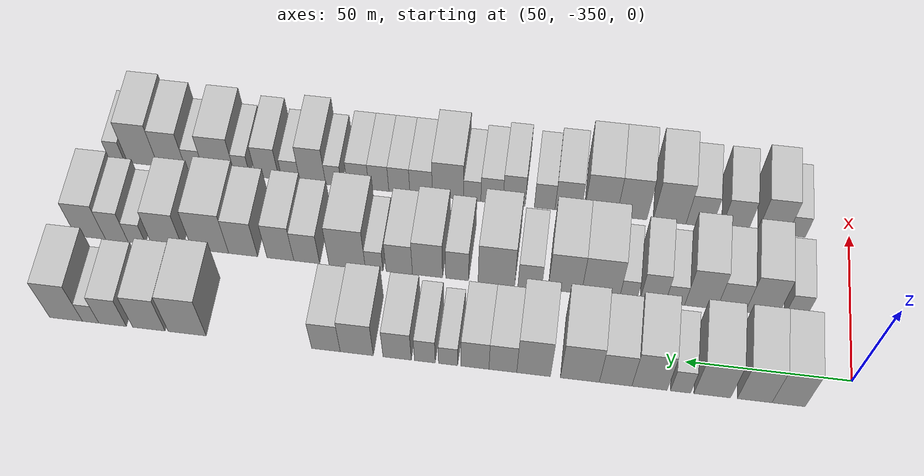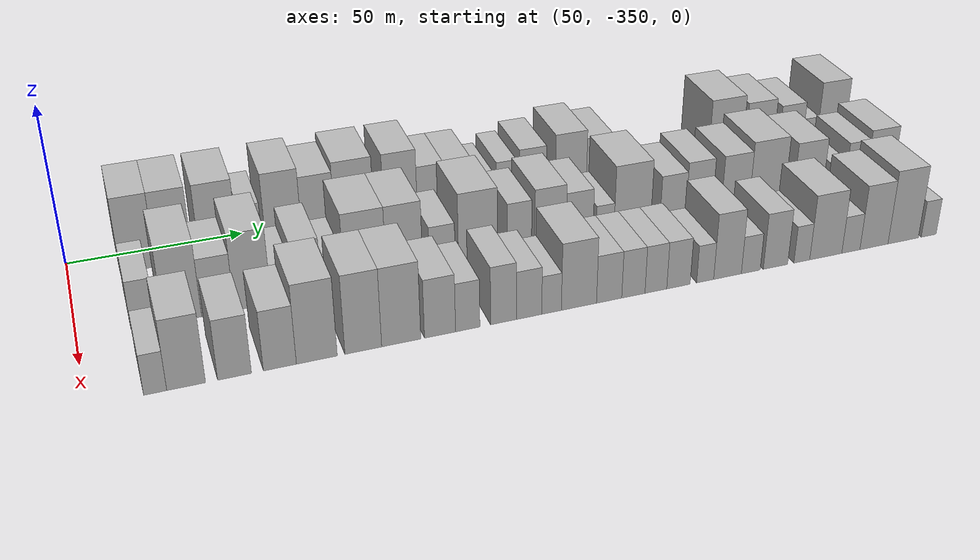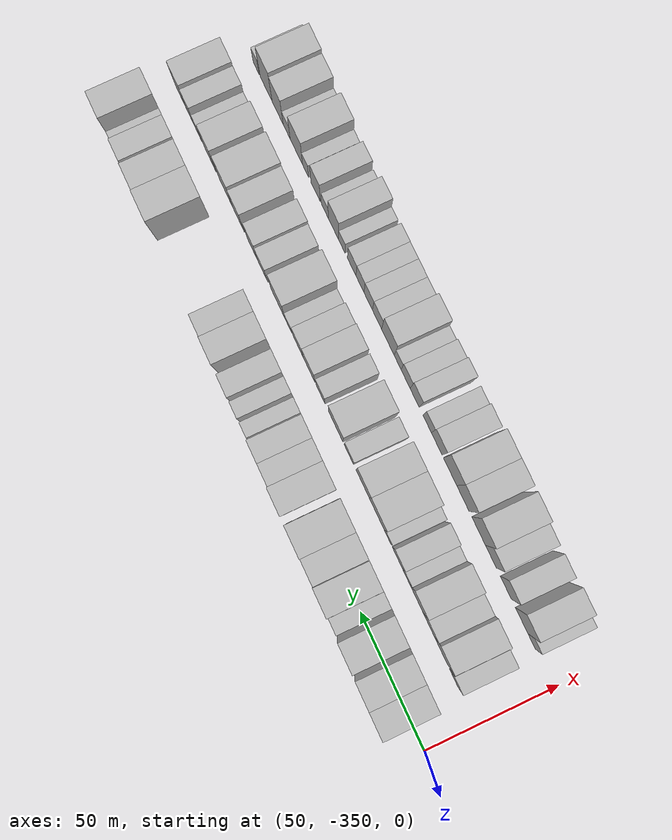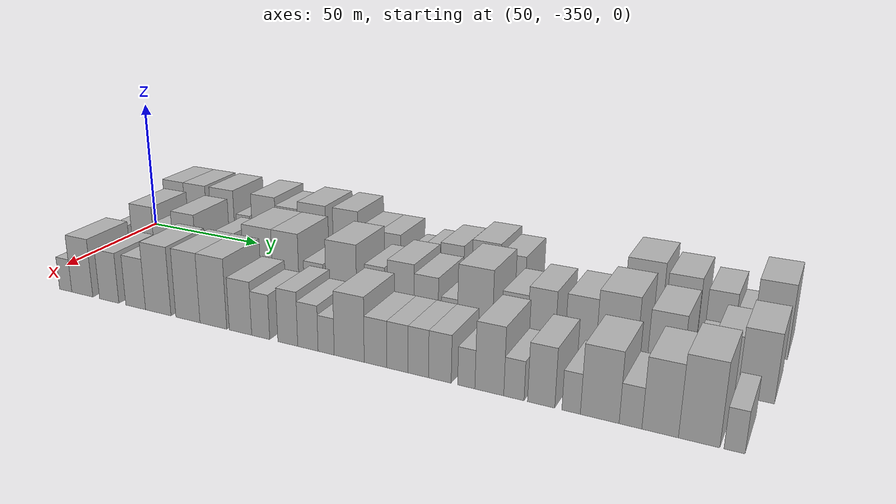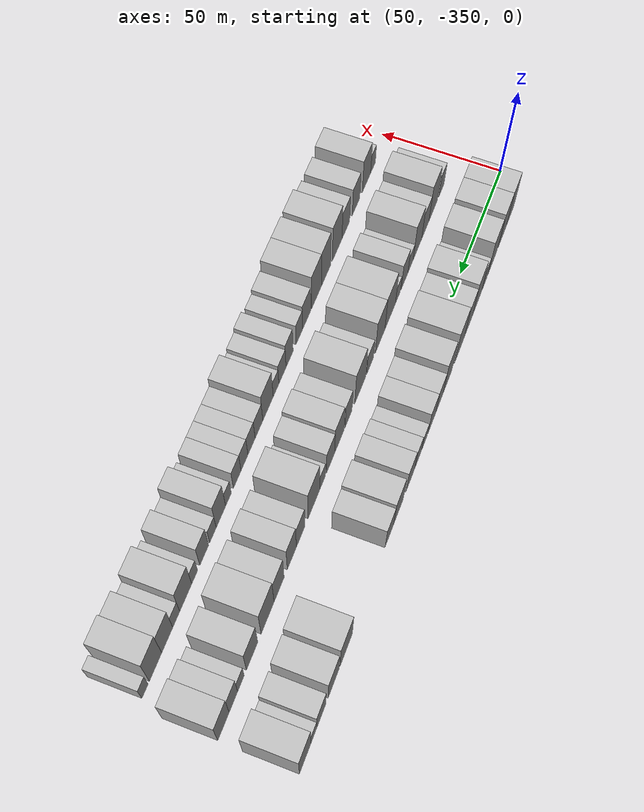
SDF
<sdf version="1.6">
 <world name="default">
  <model name="building_1">
   <static>1</static>
   <pose>50.0000 -331.0609 0 0.000000 0.000000 0.000000</pose>
   <link name="link">
    <pose>0 0 12.00 0 0 0</pose>
    <collision name="collision"><geometry><box><size>20.0000 9.8782 24.0000</size></box></geometry></collision>
    <visual name="visual">
     <cast_shadows>0</cast_shadows>
     <geometry><box><size>20.0000 9.8782 24.0000</size></box></geometry>
     <material>
      <script>
       <uri>model://HANNAS_wall/materials/scripts</uri>
       <uri>model://HANNAS_wall/materials/textures</uri>
       <name>vrc/HANNAS_wall</name>
      </script>
     </material>
    </visual>
   </link>
  </model>
  <model name="building_2">
   <static>1</static>
   <pose>50.0000 -320.9515 0 0.000000 0.000000 0.000000</pose>
   <link name="link">
    <pose>0 0 12.00 0 0 0</pose>
    <collision name="collision"><geometry><box><size>20.0000 10.3405 24.0000</size></box></geometry></collision>
    <visual name="visual">
     <cast_shadows>0</cast_shadows>
     <geometry><box><size>20.0000 10.3405 24.0000</size></box></geometry>
     <material>
      <script>
       <uri>model://HANNAS_wall/materials/scripts</uri>
       <uri>model://HANNAS_wall/materials/textures</uri>
       <name>vrc/HANNAS_wall</name>
      </script>
     </material>
    </visual>
   </link>
  </model>
  <model name="building_3">
   <static>1</static>
   <pose>50.0000 -308.2976 0 0.000000 0.000000 0.000000</pose>
   <link name="link">
    <pose>0 0 12.00 0 0 0</pose>
    <collision name="collision"><geometry><box><size>20.0000 10.9674 24.0000</size></box></geometry></collision>
    <visual name="visual">
     <cast_shadows>0</cast_shadows>
     <geometry><box><size>20.0000 10.9674 24.0000</size></box></geometry>
     <material>
      <script>
       <uri>model://HANNAS_wall/materials/scripts</uri>
       <uri>model://HANNAS_wall/materials/textures</uri>
       <name>vrc/HANNAS_wall</name>
      </script>
     </material>
    </visual>
   </link>
  </model>
  <model name="building_4">
   <static>1</static>
   <pose>50.0000 -298.7830 0 0.000000 0.000000 0.000000</pose>
   <link name="link">
    <pose>0 0 7.50 0 0 0</pose>
    <collision name="collision"><geometry><box><size>20.0000 6.0617 15.0000</size></box></geometry></collision>
    <visual name="visual">
     <cast_shadows>0</cast_shadows>
     <geometry><box><size>20.0000 6.0617 15.0000</size></box></geometry>
     <material>
      <script>
       <uri>model://HANNAS_wall/materials/scripts</uri>
       <uri>model://HANNAS_wall/materials/textures</uri>
       <name>vrc/HANNAS_wall</name>
      </script>
     </material>
    </visual>
   </link>
  </model>
  <model name="building_5">
   <static>1</static>
   <pose>50.0000 -289.4599 0 0.000000 0.000000 0.000000</pose>
   <link name="link">
    <pose>0 0 12.00 0 0 0</pose>
    <collision name="collision"><geometry><box><size>20.0000 10.5843 24.0000</size></box></geometry></collision>
    <visual name="visual">
     <cast_shadows>0</cast_shadows>
     <geometry><box><size>20.0000 10.5843 24.0000</size></box></geometry>
     <material>
      <script>
       <uri>model://HANNAS_wall/materials/scripts</uri>
       <uri>model://HANNAS_wall/materials/textures</uri>
       <name>vrc/HANNAS_wall</name>
      </script>
     </material>
    </visual>
   </link>
  </model>
  <model name="building_6">
   <static>1</static>
   <pose>50.0000 -279.2546 0 0.000000 0.000000 0.000000</pose>
   <link name="link">
    <pose>0 0 10.50 0 0 0</pose>
    <collision name="collision"><geometry><box><size>20.0000 9.8263 21.0000</size></box></geometry></collision>
    <visual name="visual">
     <cast_shadows>0</cast_shadows>
     <geometry><box><size>20.0000 9.8263 21.0000</size></box></geometry>
     <material>
      <script>
       <uri>model://HANNAS_wall/materials/scripts</uri>
       <uri>model://HANNAS_wall/materials/textures</uri>
       <name>vrc/HANNAS_wall</name>
      </script>
     </material>
    </visual>
   </link>
  </model>
  <model name="building_7">
   <static>1</static>
   <pose>50.0000 -268.4391 0 0.000000 0.000000 0.000000</pose>
   <link name="link">
    <pose>0 0 12.00 0 0 0</pose>
    <collision name="collision"><geometry><box><size>20.0000 11.8049 24.0000</size></box></geometry></collision>
    <visual name="visual">
     <cast_shadows>0</cast_shadows>
     <geometry><box><size>20.0000 11.8049 24.0000</size></box></geometry>
     <material>
      <script>
       <uri>model://HANNAS_wall/materials/scripts</uri>
       <uri>model://HANNAS_wall/materials/textures</uri>
       <name>vrc/HANNAS_wall</name>
      </script>
     </material>
    </visual>
   </link>
  </model>
  <model name="building_8">
   <static>1</static>
   <pose>50.0000 -254.4093 0 0.000000 0.000000 0.000000</pose>
   <link name="link">
    <pose>0 0 12.00 0 0 0</pose>
    <collision name="collision"><geometry><box><size>20.0000 10.2547 24.0000</size></box></geometry></collision>
    <visual name="visual">
     <cast_shadows>0</cast_shadows>
     <geometry><box><size>20.0000 10.2547 24.0000</size></box></geometry>
     <material>
      <script>
       <uri>model://HANNAS_wall/materials/scripts</uri>
       <uri>model://HANNAS_wall/materials/textures</uri>
       <name>vrc/HANNAS_wall</name>
      </script>
     </material>
    </visual>
   </link>
  </model>
  <model name="building_9">
   <static>1</static>
   <pose>50.0000 -245.0454 0 0.000000 0.000000 0.000000</pose>
   <link name="link">
    <pose>0 0 9.00 0 0 0</pose>
    <collision name="collision"><geometry><box><size>20.0000 8.4732 18.0000</size></box></geometry></collision>
    <visual name="visual">
     <cast_shadows>0</cast_shadows>
     <geometry><box><size>20.0000 8.4732 18.0000</size></box></geometry>
     <material>
      <script>
       <uri>model://HANNAS_wall/materials/scripts</uri>
       <uri>model://HANNAS_wall/materials/textures</uri>
       <name>vrc/HANNAS_wall</name>
      </script>
     </material>
    </visual>
   </link>
  </model>
  <model name="building_10">
   <static>1</static>
   <pose>50.0000 -236.5340 0 0.000000 0.000000 0.000000</pose>
   <link name="link">
    <pose>0 0 9.00 0 0 0</pose>
    <collision name="collision"><geometry><box><size>20.0000 8.5496 18.0000</size></box></geometry></collision>
    <visual name="visual">
     <cast_shadows>0</cast_shadows>
     <geometry><box><size>20.0000 8.5496 18.0000</size></box></geometry>
     <material>
      <script>
       <uri>model://HANNAS_wall/materials/scripts</uri>
       <uri>model://HANNAS_wall/materials/textures</uri>
       <name>vrc/HANNAS_wall</name>
      </script>
     </material>
    </visual>
   </link>
  </model>
  <model name="building_11">
   <static>1</static>
   <pose>50.0000 -228.3229 0 0.000000 0.000000 0.000000</pose>
   <link name="link">
    <pose>0 0 6.00 0 0 0</pose>
    <collision name="collision"><geometry><box><size>20.0000 5.8725 12.0000</size></box></geometry></collision>
    <visual name="visual">
     <cast_shadows>0</cast_shadows>
     <geometry><box><size>20.0000 5.8725 12.0000</size></box></geometry>
     <material>
      <script>
       <uri>model://HANNAS_wall/materials/scripts</uri>
       <uri>model://HANNAS_wall/materials/textures</uri>
       <name>vrc/HANNAS_wall</name>
      </script>
     </material>
    </visual>
   </link>
  </model>
  <model name="building_12">
   <static>1</static>
   <pose>50.0000 -221.2044 0 0.000000 0.000000 0.000000</pose>
   <link name="link">
    <pose>0 0 7.50 0 0 0</pose>
    <collision name="collision"><geometry><box><size>20.0000 6.3645 15.0000</size></box></geometry></collision>
    <visual name="visual">
     <cast_shadows>0</cast_shadows>
     <geometry><box><size>20.0000 6.3645 15.0000</size></box></geometry>
     <material>
      <script>
       <uri>model://HANNAS_wall/materials/scripts</uri>
       <uri>model://HANNAS_wall/materials/textures</uri>
       <name>vrc/HANNAS_wall</name>
      </script>
     </material>
    </visual>
   </link>
  </model>
  <model name="building_13">
   <static>1</static>
   <pose>50.0000 -212.6787 0 0.000000 0.000000 0.000000</pose>
   <link name="link">
    <pose>0 0 9.00 0 0 0</pose>
    <collision name="collision"><geometry><box><size>20.0000 8.6868 18.0000</size></box></geometry></collision>
    <visual name="visual">
     <cast_shadows>0</cast_shadows>
     <geometry><box><size>20.0000 8.6868 18.0000</size></box></geometry>
     <material>
      <script>
       <uri>model://HANNAS_wall/materials/scripts</uri>
       <uri>model://HANNAS_wall/materials/textures</uri>
       <name>vrc/HANNAS_wall</name>
      </script>
     </material>
    </visual>
   </link>
  </model>
  <model name="building_14">
   <static>1</static>
   <pose>50.0000 -200.2189 0 0.000000 0.000000 0.000000</pose>
   <link name="link">
    <pose>0 0 10.50 0 0 0</pose>
    <collision name="collision"><geometry><box><size>20.0000 10.2329 21.0000</size></box></geometry></collision>
    <visual name="visual">
     <cast_shadows>0</cast_shadows>
     <geometry><box><size>20.0000 10.2329 21.0000</size></box></geometry>
     <material>
      <script>
       <uri>model://HANNAS_wall/materials/scripts</uri>
       <uri>model://HANNAS_wall/materials/textures</uri>
       <name>vrc/HANNAS_wall</name>
      </script>
     </material>
    </visual>
   </link>
  </model>
  <model name="building_15">
   <static>1</static>
   <pose>50.0000 -190.6739 0 0.000000 0.000000 0.000000</pose>
   <link name="link">
    <pose>0 0 9.00 0 0 0</pose>
    <collision name="collision"><geometry><box><size>20.0000 8.8571 18.0000</size></box></geometry></collision>
    <visual name="visual">
     <cast_shadows>0</cast_shadows>
     <geometry><box><size>20.0000 8.8571 18.0000</size></box></geometry>
     <material>
      <script>
       <uri>model://HANNAS_wall/materials/scripts</uri>
       <uri>model://HANNAS_wall/materials/textures</uri>
       <name>vrc/HANNAS_wall</name>
      </script>
     </material>
    </visual>
   </link>
  </model>
  <model name="building_16">
   <static>1</static>
   <pose>50.0000 -147.3587 0 0.000000 0.000000 0.000000</pose>
   <link name="link">
    <pose>0 0 12.00 0 0 0</pose>
    <collision name="collision"><geometry><box><size>20.0000 11.9244 24.0000</size></box></geometry></collision>
    <visual name="visual">
     <cast_shadows>0</cast_shadows>
     <geometry><box><size>20.0000 11.9244 24.0000</size></box></geometry>
     <material>
      <script>
       <uri>model://HANNAS_wall/materials/scripts</uri>
       <uri>model://HANNAS_wall/materials/textures</uri>
       <name>vrc/HANNAS_wall</name>
      </script>
     </material>
    </visual>
   </link>
  </model>
  <model name="building_17">
   <static>1</static>
   <pose>50.0000 -135.2975 0 0.000000 0.000000 0.000000</pose>
   <link name="link">
    <pose>0 0 10.50 0 0 0</pose>
    <collision name="collision"><geometry><box><size>20.0000 10.1980 21.0000</size></box></geometry></collision>
    <visual name="visual">
     <cast_shadows>0</cast_shadows>
     <geometry><box><size>20.0000 10.1980 21.0000</size></box></geometry>
     <material>
      <script>
       <uri>model://HANNAS_wall/materials/scripts</uri>
       <uri>model://HANNAS_wall/materials/textures</uri>
       <name>vrc/HANNAS_wall</name>
      </script>
     </material>
    </visual>
   </link>
  </model>
  <model name="building_18">
   <static>1</static>
   <pose>50.0000 -123.8516 0 0.000000 0.000000 0.000000</pose>
   <link name="link">
    <pose>0 0 9.00 0 0 0</pose>
    <collision name="collision"><geometry><box><size>20.0000 8.6937 18.0000</size></box></geometry></collision>
    <visual name="visual">
     <cast_shadows>0</cast_shadows>
     <geometry><box><size>20.0000 8.6937 18.0000</size></box></geometry>
     <material>
      <script>
       <uri>model://HANNAS_wall/materials/scripts</uri>
       <uri>model://HANNAS_wall/materials/textures</uri>
       <name>vrc/HANNAS_wall</name>
      </script>
     </material>
    </visual>
   </link>
  </model>
  <model name="building_19">
   <static>1</static>
   <pose>50.0000 -116.8912 0 0.000000 0.000000 0.000000</pose>
   <link name="link">
    <pose>0 0 6.00 0 0 0</pose>
    <collision name="collision"><geometry><box><size>20.0000 5.2271 12.0000</size></box></geometry></collision>
    <visual name="visual">
     <cast_shadows>0</cast_shadows>
     <geometry><box><size>20.0000 5.2271 12.0000</size></box></geometry>
     <material>
      <script>
       <uri>model://HANNAS_wall/materials/scripts</uri>
       <uri>model://HANNAS_wall/materials/textures</uri>
       <name>vrc/HANNAS_wall</name>
      </script>
     </material>
    </visual>
   </link>
  </model>
  <model name="building_20">
   <static>1</static>
   <pose>50.0000 -109.0823 0 0.000000 0.000000 0.000000</pose>
   <link name="link">
    <pose>0 0 12.00 0 0 0</pose>
    <collision name="collision"><geometry><box><size>20.0000 10.3908 24.0000</size></box></geometry></collision>
    <visual name="visual">
     <cast_shadows>0</cast_shadows>
     <geometry><box><size>20.0000 10.3908 24.0000</size></box></geometry>
     <material>
      <script>
       <uri>model://HANNAS_wall/materials/scripts</uri>
       <uri>model://HANNAS_wall/materials/textures</uri>
       <name>vrc/HANNAS_wall</name>
      </script>
     </material>
    </visual>
   </link>
  </model>
  <model name="building_66">
   <static>1</static>
   <pose>79.0000 -332.7898 0 0.000000 0.000000 0.000000</pose>
   <link name="link">
    <pose>0 0 7.50 0 0 0</pose>
    <collision name="collision"><geometry><box><size>20.0000 6.4204 15.0000</size></box></geometry></collision>
    <visual name="visual">
     <cast_shadows>0</cast_shadows>
     <geometry><box><size>20.0000 6.4204 15.0000</size></box></geometry>
     <material>
      <script>
       <uri>model://HANNAS_wall/materials/scripts</uri>
       <uri>model://HANNAS_wall/materials/textures</uri>
       <name>vrc/HANNAS_wall</name>
      </script>
     </material>
    </visual>
   </link>
  </model>
  <model name="building_67">
   <static>1</static>
   <pose>79.0000 -322.5550 0 0.000000 0.000000 0.000000</pose>
   <link name="link">
    <pose>0 0 12.00 0 0 0</pose>
    <collision name="collision"><geometry><box><size>20.0000 10.0492 24.0000</size></box></geometry></collision>
    <visual name="visual">
     <cast_shadows>0</cast_shadows>
     <geometry><box><size>20.0000 10.0492 24.0000</size></box></geometry>
     <material>
      <script>
       <uri>model://HANNAS_wall/materials/scripts</uri>
       <uri>model://HANNAS_wall/materials/textures</uri>
       <name>vrc/HANNAS_wall</name>
      </script>
     </material>
    </visual>
   </link>
  </model>
  <model name="building_68">
   <static>1</static>
   <pose>79.0000 -313.1486 0 0.000000 0.000000 0.000000</pose>
   <link name="link">
    <pose>0 0 9.00 0 0 0</pose>
    <collision name="collision"><geometry><box><size>20.0000 8.7636 18.0000</size></box></geometry></collision>
    <visual name="visual">
     <cast_shadows>0</cast_shadows>
     <geometry><box><size>20.0000 8.7636 18.0000</size></box></geometry>
     <material>
      <script>
       <uri>model://HANNAS_wall/materials/scripts</uri>
       <uri>model://HANNAS_wall/materials/textures</uri>
       <name>vrc/HANNAS_wall</name>
      </script>
     </material>
    </visual>
   </link>
  </model>
  <model name="building_69">
   <static>1</static>
   <pose>79.0000 -303.7662 0 0.000000 0.000000 0.000000</pose>
   <link name="link">
    <pose>0 0 12.00 0 0 0</pose>
    <collision name="collision"><geometry><box><size>20.0000 10.0013 24.0000</size></box></geometry></collision>
    <visual name="visual">
     <cast_shadows>0</cast_shadows>
     <geometry><box><size>20.0000 10.0013 24.0000</size></box></geometry>
     <material>
      <script>
       <uri>model://HANNAS_wall/materials/scripts</uri>
       <uri>model://HANNAS_wall/materials/textures</uri>
       <name>vrc/HANNAS_wall</name>
      </script>
     </material>
    </visual>
   </link>
  </model>
  <model name="building_70">
   <static>1</static>
   <pose>79.0000 -295.7682 0 0.000000 0.000000 0.000000</pose>
   <link name="link">
    <pose>0 0 6.00 0 0 0</pose>
    <collision name="collision"><geometry><box><size>20.0000 5.9946 12.0000</size></box></geometry></collision>
    <visual name="visual">
     <cast_shadows>0</cast_shadows>
     <geometry><box><size>20.0000 5.9946 12.0000</size></box></geometry>
     <material>
      <script>
       <uri>model://HANNAS_wall/materials/scripts</uri>
       <uri>model://HANNAS_wall/materials/textures</uri>
       <name>vrc/HANNAS_wall</name>
      </script>
     </material>
    </visual>
   </link>
  </model>
  <model name="building_71">
   <static>1</static>
   <pose>79.0000 -288.8349 0 0.000000 0.000000 0.000000</pose>
   <link name="link">
    <pose>0 0 9.00 0 0 0</pose>
    <collision name="collision"><geometry><box><size>20.0000 7.8722 18.0000</size></box></geometry></collision>
    <visual name="visual">
     <cast_shadows>0</cast_shadows>
     <geometry><box><size>20.0000 7.8722 18.0000</size></box></geometry>
     <material>
      <script>
       <uri>model://HANNAS_wall/materials/scripts</uri>
       <uri>model://HANNAS_wall/materials/textures</uri>
       <name>vrc/HANNAS_wall</name>
      </script>
     </material>
    </visual>
   </link>
  </model>
  <model name="building_72">
   <static>1</static>
   <pose>79.0000 -281.1963 0 0.000000 0.000000 0.000000</pose>
   <link name="link">
    <pose>0 0 6.00 0 0 0</pose>
    <collision name="collision"><geometry><box><size>20.0000 5.4050 12.0000</size></box></geometry></collision>
    <visual name="visual">
     <cast_shadows>0</cast_shadows>
     <geometry><box><size>20.0000 5.4050 12.0000</size></box></geometry>
     <material>
      <script>
       <uri>model://HANNAS_wall/materials/scripts</uri>
       <uri>model://HANNAS_wall/materials/textures</uri>
       <name>vrc/HANNAS_wall</name>
      </script>
     </material>
    </visual>
   </link>
  </model>
  <model name="building_73">
   <static>1</static>
   <pose>79.0000 -272.5330 0 0.000000 0.000000 0.000000</pose>
   <link name="link">
    <pose>0 0 12.00 0 0 0</pose>
    <collision name="collision"><geometry><box><size>20.0000 11.9215 24.0000</size></box></geometry></collision>
    <visual name="visual">
     <cast_shadows>0</cast_shadows>
     <geometry><box><size>20.0000 11.9215 24.0000</size></box></geometry>
     <material>
      <script>
       <uri>model://HANNAS_wall/materials/scripts</uri>
       <uri>model://HANNAS_wall/materials/textures</uri>
       <name>vrc/HANNAS_wall</name>
      </script>
     </material>
    </visual>
   </link>
  </model>
  <model name="building_74">
   <static>1</static>
   <pose>79.0000 -261.3269 0 0.000000 0.000000 0.000000</pose>
   <link name="link">
    <pose>0 0 12.00 0 0 0</pose>
    <collision name="collision"><geometry><box><size>20.0000 10.4909 24.0000</size></box></geometry></collision>
    <visual name="visual">
     <cast_shadows>0</cast_shadows>
     <geometry><box><size>20.0000 10.4909 24.0000</size></box></geometry>
     <material>
      <script>
       <uri>model://HANNAS_wall/materials/scripts</uri>
       <uri>model://HANNAS_wall/materials/textures</uri>
       <name>vrc/HANNAS_wall</name>
      </script>
     </material>
    </visual>
   </link>
  </model>
  <model name="building_75">
   <static>1</static>
   <pose>79.0000 -250.3343 0 0.000000 0.000000 0.000000</pose>
   <link name="link">
    <pose>0 0 7.50 0 0 0</pose>
    <collision name="collision"><geometry><box><size>20.0000 7.4943 15.0000</size></box></geometry></collision>
    <visual name="visual">
     <cast_shadows>0</cast_shadows>
     <geometry><box><size>20.0000 7.4943 15.0000</size></box></geometry>
     <material>
      <script>
       <uri>model://HANNAS_wall/materials/scripts</uri>
       <uri>model://HANNAS_wall/materials/textures</uri>
       <name>vrc/HANNAS_wall</name>
      </script>
     </material>
    </visual>
   </link>
  </model>
  <model name="building_76">
   <static>1</static>
   <pose>79.0000 -239.8022 0 0.000000 0.000000 0.000000</pose>
   <link name="link">
    <pose>0 0 12.00 0 0 0</pose>
    <collision name="collision"><geometry><box><size>20.0000 11.5699 24.0000</size></box></geometry></collision>
    <visual name="visual">
     <cast_shadows>0</cast_shadows>
     <geometry><box><size>20.0000 11.5699 24.0000</size></box></geometry>
     <material>
      <script>
       <uri>model://HANNAS_wall/materials/scripts</uri>
       <uri>model://HANNAS_wall/materials/textures</uri>
       <name>vrc/HANNAS_wall</name>
      </script>
     </material>
    </visual>
   </link>
  </model>
  <model name="building_77">
   <static>1</static>
   <pose>79.0000 -227.3845 0 0.000000 0.000000 0.000000</pose>
   <link name="link">
    <pose>0 0 9.00 0 0 0</pose>
    <collision name="collision"><geometry><box><size>20.0000 7.2656 18.0000</size></box></geometry></collision>
    <visual name="visual">
     <cast_shadows>0</cast_shadows>
     <geometry><box><size>20.0000 7.2656 18.0000</size></box></geometry>
     <material>
      <script>
       <uri>model://HANNAS_wall/materials/scripts</uri>
       <uri>model://HANNAS_wall/materials/textures</uri>
       <name>vrc/HANNAS_wall</name>
      </script>
     </material>
    </visual>
   </link>
  </model>
  <model name="building_78">
   <static>1</static>
   <pose>79.0000 -217.9705 0 0.000000 0.000000 0.000000</pose>
   <link name="link">
    <pose>0 0 10.50 0 0 0</pose>
    <collision name="collision"><geometry><box><size>20.0000 9.5624 21.0000</size></box></geometry></collision>
    <visual name="visual">
     <cast_shadows>0</cast_shadows>
     <geometry><box><size>20.0000 9.5624 21.0000</size></box></geometry>
     <material>
      <script>
       <uri>model://HANNAS_wall/materials/scripts</uri>
       <uri>model://HANNAS_wall/materials/textures</uri>
       <name>vrc/HANNAS_wall</name>
      </script>
     </material>
    </visual>
   </link>
  </model>
  <model name="building_79">
   <static>1</static>
   <pose>79.0000 -208.9922 0 0.000000 0.000000 0.000000</pose>
   <link name="link">
    <pose>0 0 9.00 0 0 0</pose>
    <collision name="collision"><geometry><box><size>20.0000 8.3942 18.0000</size></box></geometry></collision>
    <visual name="visual">
     <cast_shadows>0</cast_shadows>
     <geometry><box><size>20.0000 8.3942 18.0000</size></box></geometry>
     <material>
      <script>
       <uri>model://HANNAS_wall/materials/scripts</uri>
       <uri>model://HANNAS_wall/materials/textures</uri>
       <name>vrc/HANNAS_wall</name>
      </script>
     </material>
    </visual>
   </link>
  </model>
  <model name="building_80">
   <static>1</static>
   <pose>79.0000 -200.9954 0 0.000000 0.000000 0.000000</pose>
   <link name="link">
    <pose>0 0 6.00 0 0 0</pose>
    <collision name="collision"><geometry><box><size>20.0000 5.5994 12.0000</size></box></geometry></collision>
    <visual name="visual">
     <cast_shadows>0</cast_shadows>
     <geometry><box><size>20.0000 5.5994 12.0000</size></box></geometry>
     <material>
      <script>
       <uri>model://HANNAS_wall/materials/scripts</uri>
       <uri>model://HANNAS_wall/materials/textures</uri>
       <name>vrc/HANNAS_wall</name>
      </script>
     </material>
    </visual>
   </link>
  </model>
  <model name="building_81">
   <static>1</static>
   <pose>79.0000 -192.3640 0 0.000000 0.000000 0.000000</pose>
   <link name="link">
    <pose>0 0 12.00 0 0 0</pose>
    <collision name="collision"><geometry><box><size>20.0000 11.6633 24.0000</size></box></geometry></collision>
    <visual name="visual">
     <cast_shadows>0</cast_shadows>
     <geometry><box><size>20.0000 11.6633 24.0000</size></box></geometry>
     <material>
      <script>
       <uri>model://HANNAS_wall/materials/scripts</uri>
       <uri>model://HANNAS_wall/materials/textures</uri>
       <name>vrc/HANNAS_wall</name>
      </script>
     </material>
    </visual>
   </link>
  </model>
  <model name="building_82">
   <static>1</static>
   <pose>79.0000 -179.3714 0 0.000000 0.000000 0.000000</pose>
   <link name="link">
    <pose>0 0 9.00 0 0 0</pose>
    <collision name="collision"><geometry><box><size>20.0000 8.3219 18.0000</size></box></geometry></collision>
    <visual name="visual">
     <cast_shadows>0</cast_shadows>
     <geometry><box><size>20.0000 8.3219 18.0000</size></box></geometry>
     <material>
      <script>
       <uri>model://HANNAS_wall/materials/scripts</uri>
       <uri>model://HANNAS_wall/materials/textures</uri>
       <name>vrc/HANNAS_wall</name>
      </script>
     </material>
    </visual>
   </link>
  </model>
  <model name="building_83">
   <static>1</static>
   <pose>79.0000 -170.8809 0 0.000000 0.000000 0.000000</pose>
   <link name="link">
    <pose>0 0 10.50 0 0 0</pose>
    <collision name="collision"><geometry><box><size>20.0000 8.6593 21.0000</size></box></geometry></collision>
    <visual name="visual">
     <cast_shadows>0</cast_shadows>
     <geometry><box><size>20.0000 8.6593 21.0000</size></box></geometry>
     <material>
      <script>
       <uri>model://HANNAS_wall/materials/scripts</uri>
       <uri>model://HANNAS_wall/materials/textures</uri>
       <name>vrc/HANNAS_wall</name>
      </script>
     </material>
    </visual>
   </link>
  </model>
  <model name="building_84">
   <static>1</static>
   <pose>79.0000 -158.8651 0 0.000000 0.000000 0.000000</pose>
   <link name="link">
    <pose>0 0 10.50 0 0 0</pose>
    <collision name="collision"><geometry><box><size>20.0000 9.3723 21.0000</size></box></geometry></collision>
    <visual name="visual">
     <cast_shadows>0</cast_shadows>
     <geometry><box><size>20.0000 9.3723 21.0000</size></box></geometry>
     <material>
      <script>
       <uri>model://HANNAS_wall/materials/scripts</uri>
       <uri>model://HANNAS_wall/materials/textures</uri>
       <name>vrc/HANNAS_wall</name>
      </script>
     </material>
    </visual>
   </link>
  </model>
  <model name="building_85">
   <static>1</static>
   <pose>79.0000 -148.2114 0 0.000000 0.000000 0.000000</pose>
   <link name="link">
    <pose>0 0 12.00 0 0 0</pose>
    <collision name="collision"><geometry><box><size>20.0000 11.9352 24.0000</size></box></geometry></collision>
    <visual name="visual">
     <cast_shadows>0</cast_shadows>
     <geometry><box><size>20.0000 11.9352 24.0000</size></box></geometry>
     <material>
      <script>
       <uri>model://HANNAS_wall/materials/scripts</uri>
       <uri>model://HANNAS_wall/materials/textures</uri>
       <name>vrc/HANNAS_wall</name>
      </script>
     </material>
    </visual>
   </link>
  </model>
  <model name="building_86">
   <static>1</static>
   <pose>79.0000 -134.1764 0 0.000000 0.000000 0.000000</pose>
   <link name="link">
    <pose>0 0 10.50 0 0 0</pose>
    <collision name="collision"><geometry><box><size>20.0000 10.1347 21.0000</size></box></geometry></collision>
    <visual name="visual">
     <cast_shadows>0</cast_shadows>
     <geometry><box><size>20.0000 10.1347 21.0000</size></box></geometry>
     <material>
      <script>
       <uri>model://HANNAS_wall/materials/scripts</uri>
       <uri>model://HANNAS_wall/materials/textures</uri>
       <name>vrc/HANNAS_wall</name>
      </script>
     </material>
    </visual>
   </link>
  </model>
  <model name="building_87">
   <static>1</static>
   <pose>79.0000 -124.2427 0 0.000000 0.000000 0.000000</pose>
   <link name="link">
    <pose>0 0 6.00 0 0 0</pose>
    <collision name="collision"><geometry><box><size>20.0000 5.7327 12.0000</size></box></geometry></collision>
    <visual name="visual">
     <cast_shadows>0</cast_shadows>
     <geometry><box><size>20.0000 5.7327 12.0000</size></box></geometry>
     <material>
      <script>
       <uri>model://HANNAS_wall/materials/scripts</uri>
       <uri>model://HANNAS_wall/materials/textures</uri>
       <name>vrc/HANNAS_wall</name>
      </script>
     </material>
    </visual>
   </link>
  </model>
  <model name="building_88">
   <static>1</static>
   <pose>79.0000 -117.6723 0 0.000000 0.000000 0.000000</pose>
   <link name="link">
    <pose>0 0 9.00 0 0 0</pose>
    <collision name="collision"><geometry><box><size>20.0000 7.4080 18.0000</size></box></geometry></collision>
    <visual name="visual">
     <cast_shadows>0</cast_shadows>
     <geometry><box><size>20.0000 7.4080 18.0000</size></box></geometry>
     <material>
      <script>
       <uri>model://HANNAS_wall/materials/scripts</uri>
       <uri>model://HANNAS_wall/materials/textures</uri>
       <name>vrc/HANNAS_wall</name>
      </script>
     </material>
    </visual>
   </link>
  </model>
  <model name="building_89">
   <static>1</static>
   <pose>79.0000 -109.0945 0 0.000000 0.000000 0.000000</pose>
   <link name="link">
    <pose>0 0 10.50 0 0 0</pose>
    <collision name="collision"><geometry><box><size>20.0000 9.7476 21.0000</size></box></geometry></collision>
    <visual name="visual">
     <cast_shadows>0</cast_shadows>
     <geometry><box><size>20.0000 9.7476 21.0000</size></box></geometry>
     <material>
      <script>
       <uri>model://HANNAS_wall/materials/scripts</uri>
       <uri>model://HANNAS_wall/materials/textures</uri>
       <name>vrc/HANNAS_wall</name>
      </script>
     </material>
    </visual>
   </link>
  </model>
  <model name="building_136">
   <static>1</static>
   <pose>108.0000 -333.1880 0 0.000000 0.000000 0.000000</pose>
   <link name="link">
    <pose>0 0 6.00 0 0 0</pose>
    <collision name="collision"><geometry><box><size>20.0000 5.6240 12.0000</size></box></geometry></collision>
    <visual name="visual">
     <cast_shadows>0</cast_shadows>
     <geometry><box><size>20.0000 5.6240 12.0000</size></box></geometry>
     <material>
      <script>
       <uri>model://HANNAS_wall/materials/scripts</uri>
       <uri>model://HANNAS_wall/materials/textures</uri>
       <name>vrc/HANNAS_wall</name>
      </script>
     </material>
    </visual>
   </link>
  </model>
  <model name="building_137">
   <static>1</static>
   <pose>108.0000 -325.6174 0 0.000000 0.000000 0.000000</pose>
   <link name="link">
    <pose>0 0 10.50 0 0 0</pose>
    <collision name="collision"><geometry><box><size>20.0000 9.5172 21.0000</size></box></geometry></collision>
    <visual name="visual">
     <cast_shadows>0</cast_shadows>
     <geometry><box><size>20.0000 9.5172 21.0000</size></box></geometry>
     <material>
      <script>
       <uri>model://HANNAS_wall/materials/scripts</uri>
       <uri>model://HANNAS_wall/materials/textures</uri>
       <name>vrc/HANNAS_wall</name>
      </script>
     </material>
    </visual>
   </link>
  </model>
  <model name="building_138">
   <static>1</static>
   <pose>108.0000 -313.6155 0 0.000000 0.000000 0.000000</pose>
   <link name="link">
    <pose>0 0 9.00 0 0 0</pose>
    <collision name="collision"><geometry><box><size>20.0000 8.4866 18.0000</size></box></geometry></collision>
    <visual name="visual">
     <cast_shadows>0</cast_shadows>
     <geometry><box><size>20.0000 8.4866 18.0000</size></box></geometry>
     <material>
      <script>
       <uri>model://HANNAS_wall/materials/scripts</uri>
       <uri>model://HANNAS_wall/materials/textures</uri>
       <name>vrc/HANNAS_wall</name>
      </script>
     </material>
    </visual>
   </link>
  </model>
  <model name="building_139">
   <static>1</static>
   <pose>108.0000 -302.1506 0 0.000000 0.000000 0.000000</pose>
   <link name="link">
    <pose>0 0 9.00 0 0 0</pose>
    <collision name="collision"><geometry><box><size>20.0000 8.4434 18.0000</size></box></geometry></collision>
    <visual name="visual">
     <cast_shadows>0</cast_shadows>
     <geometry><box><size>20.0000 8.4434 18.0000</size></box></geometry>
     <material>
      <script>
       <uri>model://HANNAS_wall/materials/scripts</uri>
       <uri>model://HANNAS_wall/materials/textures</uri>
       <name>vrc/HANNAS_wall</name>
      </script>
     </material>
    </visual>
   </link>
  </model>
  <model name="building_140">
   <static>1</static>
   <pose>108.0000 -292.6358 0 0.000000 0.000000 0.000000</pose>
   <link name="link">
    <pose>0 0 12.00 0 0 0</pose>
    <collision name="collision"><geometry><box><size>20.0000 10.5861 24.0000</size></box></geometry></collision>
    <visual name="visual">
     <cast_shadows>0</cast_shadows>
     <geometry><box><size>20.0000 10.5861 24.0000</size></box></geometry>
     <material>
      <script>
       <uri>model://HANNAS_wall/materials/scripts</uri>
       <uri>model://HANNAS_wall/materials/textures</uri>
       <name>vrc/HANNAS_wall</name>
      </script>
     </material>
    </visual>
   </link>
  </model>
  <model name="building_141">
   <static>1</static>
   <pose>108.0000 -280.4786 0 0.000000 0.000000 0.000000</pose>
   <link name="link">
    <pose>0 0 12.00 0 0 0</pose>
    <collision name="collision"><geometry><box><size>20.0000 9.7284 24.0000</size></box></geometry></collision>
    <visual name="visual">
     <cast_shadows>0</cast_shadows>
     <geometry><box><size>20.0000 9.7284 24.0000</size></box></geometry>
     <material>
      <script>
       <uri>model://HANNAS_wall/materials/scripts</uri>
       <uri>model://HANNAS_wall/materials/textures</uri>
       <name>vrc/HANNAS_wall</name>
      </script>
     </material>
    </visual>
   </link>
  </model>
  <model name="building_142">
   <static>1</static>
   <pose>108.0000 -270.3590 0 0.000000 0.000000 0.000000</pose>
   <link name="link">
    <pose>0 0 12.00 0 0 0</pose>
    <collision name="collision"><geometry><box><size>20.0000 10.5108 24.0000</size></box></geometry></collision>
    <visual name="visual">
     <cast_shadows>0</cast_shadows>
     <geometry><box><size>20.0000 10.5108 24.0000</size></box></geometry>
     <material>
      <script>
       <uri>model://HANNAS_wall/materials/scripts</uri>
       <uri>model://HANNAS_wall/materials/textures</uri>
       <name>vrc/HANNAS_wall</name>
      </script>
     </material>
    </visual>
   </link>
  </model>
  <model name="building_143">
   <static>1</static>
   <pose>108.0000 -259.8508 0 0.000000 0.000000 0.000000</pose>
   <link name="link">
    <pose>0 0 9.00 0 0 0</pose>
    <collision name="collision"><geometry><box><size>20.0000 8.5055 18.0000</size></box></geometry></collision>
    <visual name="visual">
     <cast_shadows>0</cast_shadows>
     <geometry><box><size>20.0000 8.5055 18.0000</size></box></geometry>
     <material>
      <script>
       <uri>model://HANNAS_wall/materials/scripts</uri>
       <uri>model://HANNAS_wall/materials/textures</uri>
       <name>vrc/HANNAS_wall</name>
      </script>
     </material>
    </visual>
   </link>
  </model>
  <model name="building_144">
   <static>1</static>
   <pose>108.0000 -252.2410 0 0.000000 0.000000 0.000000</pose>
   <link name="link">
    <pose>0 0 7.50 0 0 0</pose>
    <collision name="collision"><geometry><box><size>20.0000 6.7141 15.0000</size></box></geometry></collision>
    <visual name="visual">
     <cast_shadows>0</cast_shadows>
     <geometry><box><size>20.0000 6.7141 15.0000</size></box></geometry>
     <material>
      <script>
       <uri>model://HANNAS_wall/materials/scripts</uri>
       <uri>model://HANNAS_wall/materials/textures</uri>
       <name>vrc/HANNAS_wall</name>
      </script>
     </material>
    </visual>
   </link>
  </model>
  <model name="building_145">
   <static>1</static>
   <pose>108.0000 -242.2818 0 0.000000 0.000000 0.000000</pose>
   <link name="link">
    <pose>0 0 9.00 0 0 0</pose>
    <collision name="collision"><geometry><box><size>20.0000 7.2043 18.0000</size></box></geometry></collision>
    <visual name="visual">
     <cast_shadows>0</cast_shadows>
     <geometry><box><size>20.0000 7.2043 18.0000</size></box></geometry>
     <material>
      <script>
       <uri>model://HANNAS_wall/materials/scripts</uri>
       <uri>model://HANNAS_wall/materials/textures</uri>
       <name>vrc/HANNAS_wall</name>
      </script>
     </material>
    </visual>
   </link>
  </model>
  <model name="building_146">
   <static>1</static>
   <pose>108.0000 -235.0609 0 0.000000 0.000000 0.000000</pose>
   <link name="link">
    <pose>0 0 7.50 0 0 0</pose>
    <collision name="collision"><geometry><box><size>20.0000 7.2376 15.0000</size></box></geometry></collision>
    <visual name="visual">
     <cast_shadows>0</cast_shadows>
     <geometry><box><size>20.0000 7.2376 15.0000</size></box></geometry>
     <material>
      <script>
       <uri>model://HANNAS_wall/materials/scripts</uri>
       <uri>model://HANNAS_wall/materials/textures</uri>
       <name>vrc/HANNAS_wall</name>
      </script>
     </material>
    </visual>
   </link>
  </model>
  <model name="building_147">
   <static>1</static>
   <pose>108.0000 -228.6273 0 0.000000 0.000000 0.000000</pose>
   <link name="link">
    <pose>0 0 6.00 0 0 0</pose>
    <collision name="collision"><geometry><box><size>20.0000 5.6295 12.0000</size></box></geometry></collision>
    <visual name="visual">
     <cast_shadows>0</cast_shadows>
     <geometry><box><size>20.0000 5.6295 12.0000</size></box></geometry>
     <material>
      <script>
       <uri>model://HANNAS_wall/materials/scripts</uri>
       <uri>model://HANNAS_wall/materials/textures</uri>
       <name>vrc/HANNAS_wall</name>
      </script>
     </material>
    </visual>
   </link>
  </model>
  <model name="building_148">
   <static>1</static>
   <pose>108.0000 -220.7039 0 0.000000 0.000000 0.000000</pose>
   <link name="link">
    <pose>0 0 10.50 0 0 0</pose>
    <collision name="collision"><geometry><box><size>20.0000 10.2173 21.0000</size></box></geometry></collision>
    <visual name="visual">
     <cast_shadows>0</cast_shadows>
     <geometry><box><size>20.0000 10.2173 21.0000</size></box></geometry>
     <material>
      <script>
       <uri>model://HANNAS_wall/materials/scripts</uri>
       <uri>model://HANNAS_wall/materials/textures</uri>
       <name>vrc/HANNAS_wall</name>
      </script>
     </material>
    </visual>
   </link>
  </model>
  <model name="building_149">
   <static>1</static>
   <pose>108.0000 -211.8727 0 0.000000 0.000000 0.000000</pose>
   <link name="link">
    <pose>0 0 7.50 0 0 0</pose>
    <collision name="collision"><geometry><box><size>20.0000 7.4451 15.0000</size></box></geometry></collision>
    <visual name="visual">
     <cast_shadows>0</cast_shadows>
     <geometry><box><size>20.0000 7.4451 15.0000</size></box></geometry>
     <material>
      <script>
       <uri>model://HANNAS_wall/materials/scripts</uri>
       <uri>model://HANNAS_wall/materials/textures</uri>
       <name>vrc/HANNAS_wall</name>
      </script>
     </material>
    </visual>
   </link>
  </model>
  <model name="building_150">
   <static>1</static>
   <pose>108.0000 -204.6912 0 0.000000 0.000000 0.000000</pose>
   <link name="link">
    <pose>0 0 7.50 0 0 0</pose>
    <collision name="collision"><geometry><box><size>20.0000 6.9179 15.0000</size></box></geometry></collision>
    <visual name="visual">
     <cast_shadows>0</cast_shadows>
     <geometry><box><size>20.0000 6.9179 15.0000</size></box></geometry>
     <material>
      <script>
       <uri>model://HANNAS_wall/materials/scripts</uri>
       <uri>model://HANNAS_wall/materials/textures</uri>
       <name>vrc/HANNAS_wall</name>
      </script>
     </material>
    </visual>
   </link>
  </model>
  <model name="building_151">
   <static>1</static>
   <pose>108.0000 -197.9535 0 0.000000 0.000000 0.000000</pose>
   <link name="link">
    <pose>0 0 7.50 0 0 0</pose>
    <collision name="collision"><geometry><box><size>20.0000 6.5575 15.0000</size></box></geometry></collision>
    <visual name="visual">
     <cast_shadows>0</cast_shadows>
     <geometry><box><size>20.0000 6.5575 15.0000</size></box></geometry>
     <material>
      <script>
       <uri>model://HANNAS_wall/materials/scripts</uri>
       <uri>model://HANNAS_wall/materials/textures</uri>
       <name>vrc/HANNAS_wall</name>
      </script>
     </material>
    </visual>
   </link>
  </model>
  <model name="building_152">
   <static>1</static>
   <pose>108.0000 -191.1270 0 0.000000 0.000000 0.000000</pose>
   <link name="link">
    <pose>0 0 7.50 0 0 0</pose>
    <collision name="collision"><geometry><box><size>20.0000 7.0955 15.0000</size></box></geometry></collision>
    <visual name="visual">
     <cast_shadows>0</cast_shadows>
     <geometry><box><size>20.0000 7.0955 15.0000</size></box></geometry>
     <material>
      <script>
       <uri>model://HANNAS_wall/materials/scripts</uri>
       <uri>model://HANNAS_wall/materials/textures</uri>
       <name>vrc/HANNAS_wall</name>
      </script>
     </material>
    </visual>
   </link>
  </model>
  <model name="building_153">
   <static>1</static>
   <pose>108.0000 -182.9572 0 0.000000 0.000000 0.000000</pose>
   <link name="link">
    <pose>0 0 6.00 0 0 0</pose>
    <collision name="collision"><geometry><box><size>20.0000 5.2442 12.0000</size></box></geometry></collision>
    <visual name="visual">
     <cast_shadows>0</cast_shadows>
     <geometry><box><size>20.0000 5.2442 12.0000</size></box></geometry>
     <material>
      <script>
       <uri>model://HANNAS_wall/materials/scripts</uri>
       <uri>model://HANNAS_wall/materials/textures</uri>
       <name>vrc/HANNAS_wall</name>
      </script>
     </material>
    </visual>
   </link>
  </model>
  <model name="building_154">
   <static>1</static>
   <pose>108.0000 -176.0312 0 0.000000 0.000000 0.000000</pose>
   <link name="link">
    <pose>0 0 10.50 0 0 0</pose>
    <collision name="collision"><geometry><box><size>20.0000 8.6077 21.0000</size></box></geometry></collision>
    <visual name="visual">
     <cast_shadows>0</cast_shadows>
     <geometry><box><size>20.0000 8.6077 21.0000</size></box></geometry>
     <material>
      <script>
       <uri>model://HANNAS_wall/materials/scripts</uri>
       <uri>model://HANNAS_wall/materials/textures</uri>
       <name>vrc/HANNAS_wall</name>
      </script>
     </material>
    </visual>
   </link>
  </model>
  <model name="building_155">
   <static>1</static>
   <pose>108.0000 -168.7719 0 0.000000 0.000000 0.000000</pose>
   <link name="link">
    <pose>0 0 6.00 0 0 0</pose>
    <collision name="collision"><geometry><box><size>20.0000 5.9109 12.0000</size></box></geometry></collision>
    <visual name="visual">
     <cast_shadows>0</cast_shadows>
     <geometry><box><size>20.0000 5.9109 12.0000</size></box></geometry>
     <material>
      <script>
       <uri>model://HANNAS_wall/materials/scripts</uri>
       <uri>model://HANNAS_wall/materials/textures</uri>
       <name>vrc/HANNAS_wall</name>
      </script>
     </material>
    </visual>
   </link>
  </model>
  <model name="building_156">
   <static>1</static>
   <pose>108.0000 -160.9435 0 0.000000 0.000000 0.000000</pose>
   <link name="link">
    <pose>0 0 9.00 0 0 0</pose>
    <collision name="collision"><geometry><box><size>20.0000 7.7460 18.0000</size></box></geometry></collision>
    <visual name="visual">
     <cast_shadows>0</cast_shadows>
     <geometry><box><size>20.0000 7.7460 18.0000</size></box></geometry>
     <material>
      <script>
       <uri>model://HANNAS_wall/materials/scripts</uri>
       <uri>model://HANNAS_wall/materials/textures</uri>
       <name>vrc/HANNAS_wall</name>
      </script>
     </material>
    </visual>
   </link>
  </model>
  <model name="building_157">
   <static>1</static>
   <pose>108.0000 -152.5189 0 0.000000 0.000000 0.000000</pose>
   <link name="link">
    <pose>0 0 6.00 0 0 0</pose>
    <collision name="collision"><geometry><box><size>20.0000 5.1032 12.0000</size></box></geometry></collision>
    <visual name="visual">
     <cast_shadows>0</cast_shadows>
     <geometry><box><size>20.0000 5.1032 12.0000</size></box></geometry>
     <material>
      <script>
       <uri>model://HANNAS_wall/materials/scripts</uri>
       <uri>model://HANNAS_wall/materials/textures</uri>
       <name>vrc/HANNAS_wall</name>
      </script>
     </material>
    </visual>
   </link>
  </model>
  <model name="building_158">
   <static>1</static>
   <pose>108.0000 -144.7410 0 0.000000 0.000000 0.000000</pose>
   <link name="link">
    <pose>0 0 10.50 0 0 0</pose>
    <collision name="collision"><geometry><box><size>20.0000 10.4527 21.0000</size></box></geometry></collision>
    <visual name="visual">
     <cast_shadows>0</cast_shadows>
     <geometry><box><size>20.0000 10.4527 21.0000</size></box></geometry>
     <material>
      <script>
       <uri>model://HANNAS_wall/materials/scripts</uri>
       <uri>model://HANNAS_wall/materials/textures</uri>
       <name>vrc/HANNAS_wall</name>
      </script>
     </material>
    </visual>
   </link>
  </model>
  <model name="building_159">
   <static>1</static>
   <pose>108.0000 -136.5332 0 0.000000 0.000000 0.000000</pose>
   <link name="link">
    <pose>0 0 6.00 0 0 0</pose>
    <collision name="collision"><geometry><box><size>20.0000 5.9628 12.0000</size></box></geometry></collision>
    <visual name="visual">
     <cast_shadows>0</cast_shadows>
     <geometry><box><size>20.0000 5.9628 12.0000</size></box></geometry>
     <material>
      <script>
       <uri>model://HANNAS_wall/materials/scripts</uri>
       <uri>model://HANNAS_wall/materials/textures</uri>
       <name>vrc/HANNAS_wall</name>
      </script>
     </material>
    </visual>
   </link>
  </model>
  <model name="building_160">
   <static>1</static>
   <pose>108.0000 -128.8694 0 0.000000 0.000000 0.000000</pose>
   <link name="link">
    <pose>0 0 10.50 0 0 0</pose>
    <collision name="collision"><geometry><box><size>20.0000 9.3649 21.0000</size></box></geometry></collision>
    <visual name="visual">
     <cast_shadows>0</cast_shadows>
     <geometry><box><size>20.0000 9.3649 21.0000</size></box></geometry>
     <material>
      <script>
       <uri>model://HANNAS_wall/materials/scripts</uri>
       <uri>model://HANNAS_wall/materials/textures</uri>
       <name>vrc/HANNAS_wall</name>
      </script>
     </material>
    </visual>
   </link>
  </model>
  <model name="building_161">
   <static>1</static>
   <pose>108.0000 -119.0580 0 0.000000 0.000000 0.000000</pose>
   <link name="link">
    <pose>0 0 12.00 0 0 0</pose>
    <collision name="collision"><geometry><box><size>20.0000 10.2579 24.0000</size></box></geometry></collision>
    <visual name="visual">
     <cast_shadows>0</cast_shadows>
     <geometry><box><size>20.0000 10.2579 24.0000</size></box></geometry>
     <material>
      <script>
       <uri>model://HANNAS_wall/materials/scripts</uri>
       <uri>model://HANNAS_wall/materials/textures</uri>
       <name>vrc/HANNAS_wall</name>
      </script>
     </material>
    </visual>
   </link>
  </model>
  <model name="building_162">
   <static>1</static>
   <pose>108.0000 -110.3837 0 0.000000 0.000000 0.000000</pose>
   <link name="link">
    <pose>0 0 6.00 0 0 0</pose>
    <collision name="collision"><geometry><box><size>20.0000 5.0906 12.0000</size></box></geometry></collision>
    <visual name="visual">
     <cast_shadows>0</cast_shadows>
     <geometry><box><size>20.0000 5.0906 12.0000</size></box></geometry>
     <material>
      <script>
       <uri>model://HANNAS_wall/materials/scripts</uri>
       <uri>model://HANNAS_wall/materials/textures</uri>
       <name>vrc/HANNAS_wall</name>
      </script>
     </material>
    </visual>
   </link>
  </model>
 </world>
</sdf>
